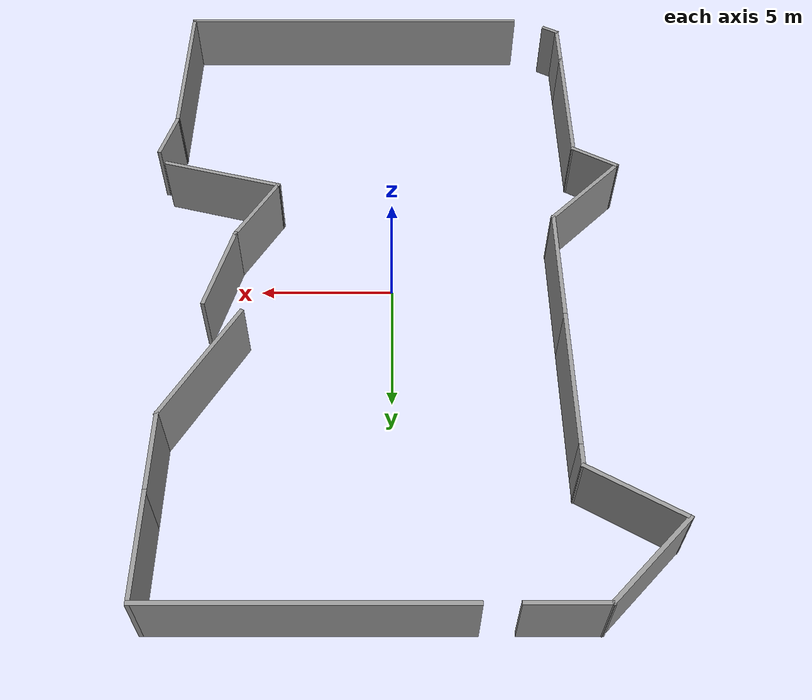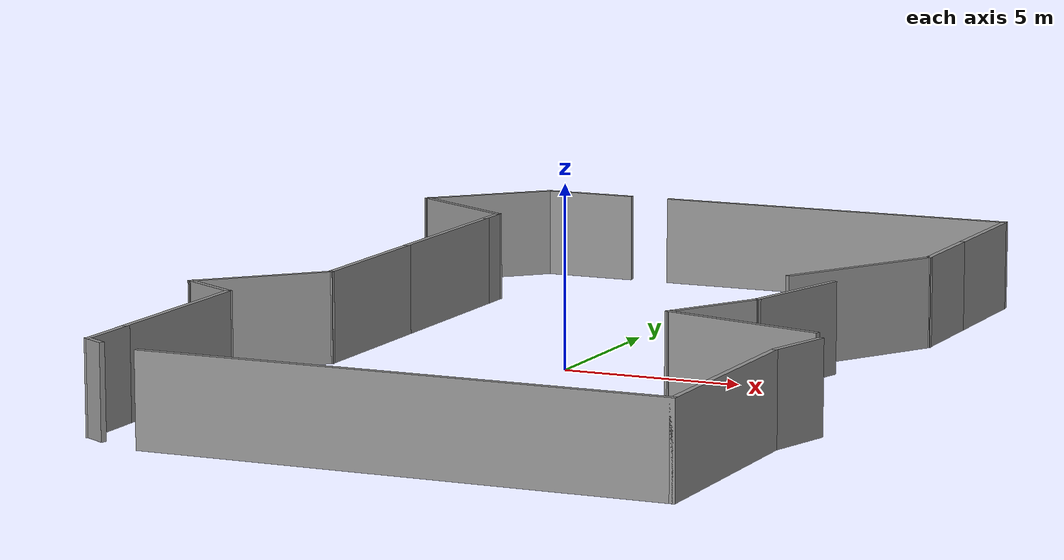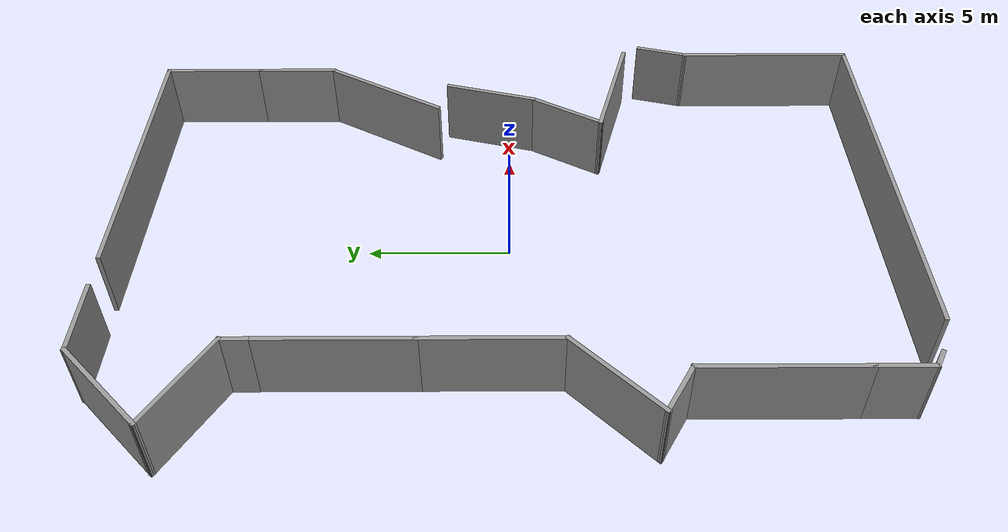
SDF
<?xml version='1.0'?>
<sdf version='1.7'>
  <model name='NewSimpleENV'>
    <model name='SimpleENV'>
      <pose>1e-06 -0 0 0 -0 0</pose>
      <link name='Wall_11'>
        <collision name='Wall_11_Collision'>
          <geometry>
            <box>
              <size>14.25 0.15 2.5</size>
            </box>
          </geometry>
          <pose>0 0 1.25 0 -0 0</pose>
        </collision>
        <visual name='Wall_11_Visual'>
          <pose>0 0 1.25 0 -0 0</pose>
          <geometry>
            <box>
              <size>14.25 0.15 2.5</size>
            </box>
          </geometry>
          <material>
            <script>
              <uri>file://media/materials/scripts/gazebo.material</uri>
              <name>Gazebo/Grey</name>
            </script>
            <ambient>1 1 1 1</ambient>
          </material>
          <meta>
            <layer>0</layer>
          </meta>
        </visual>
        <pose>1.69888 -13.3705 0 0 -0 0</pose>
      </link>
      <link name='Wall_12'>
        <collision name='Wall_12_Collision'>
          <geometry>
            <box>
              <size>6.5 0.15 2.5</size>
            </box>
          </geometry>
          <pose>0 0 1.25 0 -0 0</pose>
        </collision>
        <visual name='Wall_12_Visual'>
          <pose>0 0 1.25 0 -0 0</pose>
          <geometry>
            <box>
              <size>6.5 0.15 2.5</size>
            </box>
          </geometry>
          <material>
            <script>
              <uri>file://media/materials/scripts/gazebo.material</uri>
              <name>Gazebo/Grey</name>
            </script>
            <ambient>1 1 1 1</ambient>
          </material>
          <meta>
            <layer>0</layer>
          </meta>
        </visual>
        <pose>8.74888 -10.1955 0 0 -0 1.5708</pose>
      </link>
      <link name='Wall_14'>
        <collision name='Wall_14_Collision'>
          <geometry>
            <box>
              <size>2 0.15 2.5</size>
            </box>
          </geometry>
          <pose>0 0 1.25 0 -0 0</pose>
        </collision>
        <visual name='Wall_14_Visual'>
          <pose>0 0 1.25 0 -0 0</pose>
          <geometry>
            <box>
              <size>2 0.15 2.5</size>
            </box>
          </geometry>
          <material>
            <script>
              <uri>file://media/materials/scripts/gazebo.material</uri>
              <name>Gazebo/Grey</name>
            </script>
            <ambient>1 1 1 1</ambient>
          </material>
          <meta>
            <layer>0</layer>
          </meta>
        </visual>
        <pose>8.98829 -6.12705 0 0 -0 1.309</pose>
      </link>
      <link name='Wall_16'>
        <collision name='Wall_16_Collision'>
          <geometry>
            <box>
              <size>4.75 0.15 2.5</size>
            </box>
          </geometry>
          <pose>0 0 1.25 0 -0 0</pose>
        </collision>
        <visual name='Wall_16_Visual'>
          <pose>0 0 1.25 0 -0 0</pose>
          <geometry>
            <box>
              <size>4.75 0.15 2.5</size>
            </box>
          </geometry>
          <material>
            <script>
              <uri>file://media/materials/scripts/gazebo.material</uri>
              <name>Gazebo/Grey</name>
            </script>
            <ambient>1 1 1 1</ambient>
          </material>
          <meta>
            <layer>0</layer>
          </meta>
        </visual>
        <pose>6.63725 -3.98525 0 0 -0 2.87979</pose>
      </link>
      <link name='Wall_18'>
        <collision name='Wall_18_Collision'>
          <geometry>
            <box>
              <size>3 0.15 2.5</size>
            </box>
          </geometry>
          <pose>0 0 1.25 0 -0 0</pose>
        </collision>
        <visual name='Wall_18_Visual'>
          <pose>0 0 1.25 0 -0 0</pose>
          <geometry>
            <box>
              <size>3 0.15 2.5</size>
            </box>
          </geometry>
          <material>
            <script>
              <uri>file://media/materials/scripts/gazebo.material</uri>
              <name>Gazebo/Grey</name>
            </script>
            <ambient>1 1 1 1</ambient>
          </material>
          <meta>
            <layer>0</layer>
          </meta>
        </visual>
        <pose>5.12812 -2.15588 0 0 -0 1.0472</pose>
      </link>
      <link name='Wall_20'>
        <collision name='Wall_20_Collision'>
          <geometry>
            <box>
              <size>3.5 0.15 2.5</size>
            </box>
          </geometry>
          <pose>0 0 1.25 0 -0 0</pose>
        </collision>
        <visual name='Wall_20_Visual'>
          <pose>0 0 1.25 0 -0 0</pose>
          <geometry>
            <box>
              <size>3.5 0.15 2.5</size>
            </box>
          </geometry>
          <material>
            <script>
              <uri>file://media/materials/scripts/gazebo.material</uri>
              <name>Gazebo/Grey</name>
            </script>
            <ambient>1 1 1 1</ambient>
          </material>
          <meta>
            <layer>0</layer>
          </meta>
        </visual>
        <pose>6.27414 0.696133 0 0 -0 1.309</pose>
      </link>
      <link name='Wall_23'>
        <collision name='Wall_23_Collision'>
          <geometry>
            <box>
              <size>5 0.15 2.5</size>
            </box>
          </geometry>
          <pose>0 0 1.25 0 -0 0</pose>
        </collision>
        <visual name='Wall_23_Visual'>
          <pose>0 0 1.25 0 -0 0</pose>
          <geometry>
            <box>
              <size>5 0.15 2.5</size>
            </box>
          </geometry>
          <material>
            <script>
              <uri>file://media/materials/scripts/gazebo.material</uri>
              <name>Gazebo/Grey</name>
            </script>
            <ambient>1 1 1 1</ambient>
          </material>
          <meta>
            <layer>0</layer>
          </meta>
        </visual>
        <pose>6.54138 4.79958 0 0 -0 1.0472</pose>
      </link>
      <link name='Wall_25'>
        <collision name='Wall_25_Collision'>
          <geometry>
            <box>
              <size>3 0.15 2.5</size>
            </box>
          </geometry>
          <pose>0 0 1.25 0 -0 0</pose>
        </collision>
        <visual name='Wall_25_Visual'>
          <pose>0 0 1.25 0 -0 0</pose>
          <geometry>
            <box>
              <size>3 0.15 2.5</size>
            </box>
          </geometry>
          <material>
            <script>
              <uri>file://media/materials/scripts/gazebo.material</uri>
              <name>Gazebo/Grey</name>
            </script>
            <ambient>1 1 1 1</ambient>
          </material>
          <meta>
            <layer>0</layer>
          </meta>
        </visual>
        <pose>7.75388 8.32469 0 0 -0 1.5708</pose>
      </link>
      <link name='Wall_27'>
        <collision name='Wall_27_Collision'>
          <geometry>
            <box>
              <size>3.75 0.15 2.5</size>
            </box>
          </geometry>
          <pose>0 0 1.25 0 -0 0</pose>
        </collision>
        <visual name='Wall_27_Visual'>
          <pose>0 0 1.25 0 -0 0</pose>
          <geometry>
            <box>
              <size>3.75 0.15 2.5</size>
            </box>
          </geometry>
          <material>
            <script>
              <uri>file://media/materials/scripts/gazebo.material</uri>
              <name>Gazebo/Grey</name>
            </script>
            <ambient>1 1 1 1</ambient>
          </material>
          <meta>
            <layer>0</layer>
          </meta>
        </visual>
        <pose>7.75388 11.5497 0 0 -0 1.5708</pose>
      </link>
      <link name='Wall_29'>
        <collision name='Wall_29_Collision'>
          <geometry>
            <box>
              <size>10.5 0.15 2.5</size>
            </box>
          </geometry>
          <pose>0 0 1.25 0 -0 0</pose>
        </collision>
        <visual name='Wall_29_Visual'>
          <pose>0 0 1.25 0 -0 0</pose>
          <geometry>
            <box>
              <size>10.5 0.15 2.5</size>
            </box>
          </geometry>
          <material>
            <script>
              <uri>file://media/materials/scripts/gazebo.material</uri>
              <name>Gazebo/Grey</name>
            </script>
            <ambient>1 1 1 1</ambient>
          </material>
          <meta>
            <layer>0</layer>
          </meta>
        </visual>
        <pose>2.57888 13.3497 0 0 -0 3.14159</pose>
      </link>
      <link name='Wall_31'>
        <collision name='Wall_31_Collision'>
          <geometry>
            <box>
              <size>2.75 0.15 2.5</size>
            </box>
          </geometry>
          <pose>0 0 1.25 0 -0 0</pose>
        </collision>
        <visual name='Wall_31_Visual'>
          <pose>0 0 1.25 0 -0 0</pose>
          <geometry>
            <box>
              <size>2.75 0.15 2.5</size>
            </box>
          </geometry>
          <material>
            <script>
              <uri>file://media/materials/scripts/gazebo.material</uri>
              <name>Gazebo/Grey</name>
            </script>
            <ambient>1 1 1 1</ambient>
          </material>
          <meta>
            <layer>0</layer>
          </meta>
        </visual>
        <pose>-5.19112 13.3395 0 0 -0 3.14159</pose>
      </link>
      <link name='Wall_34'>
        <collision name='Wall_34_Collision'>
          <geometry>
            <box>
              <size>4 0.15 2.5</size>
            </box>
          </geometry>
          <pose>0 0 1.25 0 -0 0</pose>
        </collision>
        <visual name='Wall_34_Visual'>
          <pose>0 0 1.25 0 -0 0</pose>
          <geometry>
            <box>
              <size>4 0.15 2.5</size>
            </box>
          </geometry>
          <material>
            <script>
              <uri>file://media/materials/scripts/gazebo.material</uri>
              <name>Gazebo/Grey</name>
            </script>
            <ambient>1 1 1 1</ambient>
          </material>
          <meta>
            <layer>0</layer>
          </meta>
        </visual>
        <pose>-7.8523 11.9783 0 0 -0 -2.35619</pose>
      </link>
      <link name='Wall_35'>
        <collision name='Wall_35_Collision'>
          <geometry>
            <box>
              <size>3.75 0.15 2.5</size>
            </box>
          </geometry>
          <pose>0 0 1.25 0 -0 0</pose>
        </collision>
        <visual name='Wall_35_Visual'>
          <pose>0 0 1.25 0 -0 0</pose>
          <geometry>
            <box>
              <size>3.75 0.15 2.5</size>
            </box>
          </geometry>
          <material>
            <script>
              <uri>file://media/materials/scripts/gazebo.material</uri>
              <name>Gazebo/Grey</name>
            </script>
            <ambient>1 1 1 1</ambient>
          </material>
          <meta>
            <layer>0</layer>
          </meta>
        </visual>
        <pose>-7.65464 9.71711 0 0 -0 -0.523599</pose>
      </link>
      <link name='Wall_36'>
        <collision name='Wall_36_Collision'>
          <geometry>
            <box>
              <size>1 0.15 2.5</size>
            </box>
          </geometry>
          <pose>0 0 1.25 0 -0 0</pose>
        </collision>
        <visual name='Wall_36_Visual'>
          <pose>0 0 1.25 0 -0 0</pose>
          <geometry>
            <box>
              <size>1 0.15 2.5</size>
            </box>
          </geometry>
          <material>
            <script>
              <uri>file://media/materials/scripts/gazebo.material</uri>
              <name>Gazebo/Grey</name>
            </script>
            <ambient>1 1 1 1</ambient>
          </material>
          <meta>
            <layer>0</layer>
          </meta>
        </visual>
        <pose>-6.09579 8.39211 0 0 -0 -1.5708</pose>
      </link>
      <link name='Wall_38'>
        <collision name='Wall_38_Collision'>
          <geometry>
            <box>
              <size>5.25 0.15 2.5</size>
            </box>
          </geometry>
          <pose>0 0 1.25 0 -0 0</pose>
        </collision>
        <visual name='Wall_38_Visual'>
          <pose>0 0 1.25 0 -0 0</pose>
          <geometry>
            <box>
              <size>5.25 0.15 2.5</size>
            </box>
          </geometry>
          <material>
            <script>
              <uri>file://media/materials/scripts/gazebo.material</uri>
              <name>Gazebo/Grey</name>
            </script>
            <ambient>1 1 1 1</ambient>
          </material>
          <meta>
            <layer>0</layer>
          </meta>
        </visual>
        <pose>-6.09579 5.41711 0 0 -0 -1.5708</pose>
      </link>
      <link name='Wall_40'>
        <collision name='Wall_40_Collision'>
          <geometry>
            <box>
              <size>4.75 0.15 2.5</size>
            </box>
          </geometry>
          <pose>0 0 1.25 0 -0 0</pose>
        </collision>
        <visual name='Wall_40_Visual'>
          <pose>0 0 1.25 0 -0 0</pose>
          <geometry>
            <box>
              <size>4.75 0.15 2.5</size>
            </box>
          </geometry>
          <material>
            <script>
              <uri>file://media/materials/scripts/gazebo.material</uri>
              <name>Gazebo/Grey</name>
            </script>
            <ambient>1 1 1 1</ambient>
          </material>
          <meta>
            <layer>0</layer>
          </meta>
        </visual>
        <pose>-6.09579 0.567106 0 0 -0 -1.5708</pose>
      </link>
      <link name='Wall_42'>
        <collision name='Wall_42_Collision'>
          <geometry>
            <box>
              <size>4 0.15 2.5</size>
            </box>
          </geometry>
          <pose>0 0 1.25 0 -0 0</pose>
        </collision>
        <visual name='Wall_42_Visual'>
          <pose>0 0 1.25 0 -0 0</pose>
          <geometry>
            <box>
              <size>4 0.15 2.5</size>
            </box>
          </geometry>
          <material>
            <script>
              <uri>file://media/materials/scripts/gazebo.material</uri>
              <name>Gazebo/Grey</name>
            </script>
            <ambient>1 1 1 1</ambient>
          </material>
          <meta>
            <layer>0</layer>
          </meta>
        </visual>
        <pose>-7.45697 -3.09408 0 0 -0 -2.35619</pose>
      </link>
      <link name='Wall_43'>
        <collision name='Wall_43_Collision'>
          <geometry>
            <box>
              <size>2 0.15 2.5</size>
            </box>
          </geometry>
          <pose>0 0 1.25 0 -0 0</pose>
        </collision>
        <visual name='Wall_43_Visual'>
          <pose>0 0 1.25 0 -0 0</pose>
          <geometry>
            <box>
              <size>2 0.15 2.5</size>
            </box>
          </geometry>
          <material>
            <script>
              <uri>file://media/materials/scripts/gazebo.material</uri>
              <name>Gazebo/Grey</name>
            </script>
            <ambient>1 1 1 1</ambient>
          </material>
          <meta>
            <layer>0</layer>
          </meta>
        </visual>
        <pose>-8.01708 -4.91775 0 0 -0 -0.523599</pose>
      </link>
      <link name='Wall_45'>
        <collision name='Wall_45_Collision'>
          <geometry>
            <box>
              <size>5.5 0.15 2.5</size>
            </box>
          </geometry>
          <pose>0 0 1.25 0 -0 0</pose>
        </collision>
        <visual name='Wall_45_Visual'>
          <pose>0 0 1.25 0 -0 0</pose>
          <geometry>
            <box>
              <size>5.5 0.15 2.5</size>
            </box>
          </geometry>
          <material>
            <script>
              <uri>file://media/materials/scripts/gazebo.material</uri>
              <name>Gazebo/Grey</name>
            </script>
            <ambient>1 1 1 1</ambient>
          </material>
          <meta>
            <layer>0</layer>
          </meta>
        </visual>
        <pose>-7.21601 -8.05526 0 0 -0 -1.5708</pose>
      </link>
      <link name='Wall_49'>
        <collision name='Wall_49_Collision'>
          <geometry>
            <box>
              <size>2 0.15 2.5</size>
            </box>
          </geometry>
          <pose>0 0 1.25 0 -0 0</pose>
        </collision>
        <visual name='Wall_49_Visual'>
          <pose>0 0 1.25 0 -0 0</pose>
          <geometry>
            <box>
              <size>2 0.15 2.5</size>
            </box>
          </geometry>
          <material>
            <script>
              <uri>file://media/materials/scripts/gazebo.material</uri>
              <name>Gazebo/Grey</name>
            </script>
            <ambient>1 1 1 1</ambient>
          </material>
          <meta>
            <layer>0</layer>
          </meta>
        </visual>
        <pose>-7.21601 -11.6553 0 0 -0 -1.5708</pose>
      </link>
      <link name='Wall_51'>
        <collision name='Wall_51_Collision'>
          <geometry>
            <box>
              <size>0.75 0.15 2.5</size>
            </box>
          </geometry>
          <pose>0 0 1.25 0 -0 0</pose>
        </collision>
        <visual name='Wall_51_Visual'>
          <pose>0 0 1.25 0 -0 0</pose>
          <geometry>
            <box>
              <size>0.75 0.15 2.5</size>
            </box>
          </geometry>
          <material>
            <script>
              <uri>file://media/materials/scripts/gazebo.material</uri>
              <name>Gazebo/Grey</name>
            </script>
            <ambient>1 1 1 1</ambient>
          </material>
          <meta>
            <layer>0</layer>
          </meta>
        </visual>
        <pose>-6.9562 -12.7303 0 0 -0 -0.523599</pose>
      </link>
      <static>1</static>
    </model>
    <static>0</static>
    <allow_auto_disable>1</allow_auto_disable>
  </model>
</sdf>
